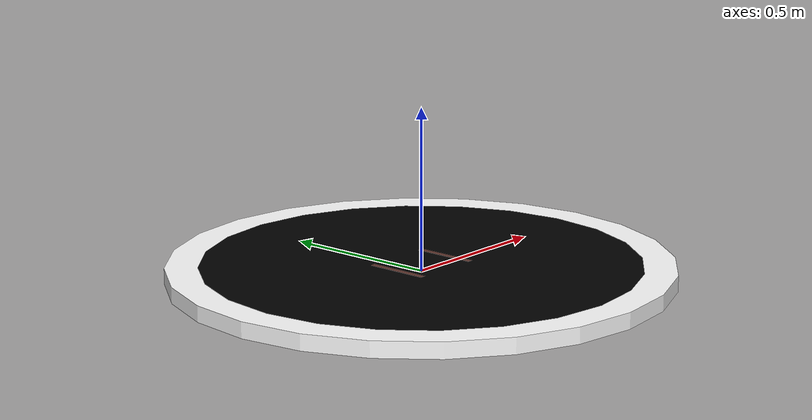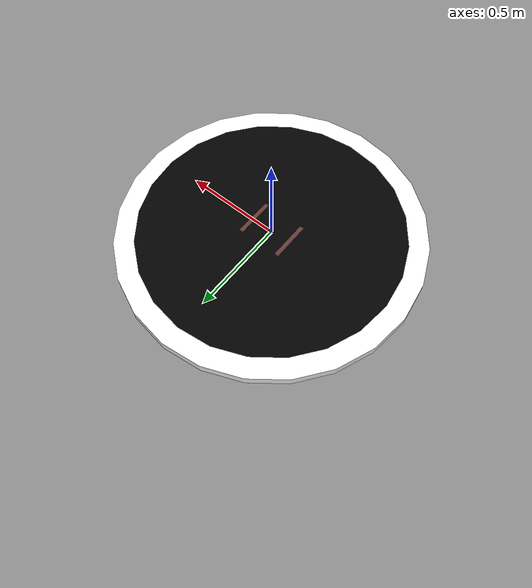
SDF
<?xml version="1.0" ?>
<sdf version="1.5">
  <world name="sumo_ring">
    <physics type="ode">
      <!-- Theoretically 100x real time speed, but obviously limited by
           how fast the computer can handle it... -->
      <real_time_update_rate>100000</real_time_update_rate>
    </physics>
    <include>
      <uri>model://sun</uri>
    </include>
    <model name="ring">
      <static>true</static>
      <link name="base_link">
        <visual name="white_circle">
          <geometry>
            <cylinder>
              <length>0.05</length>
              <radius>0.67</radius>
            </cylinder>
          </geometry>
          <material>
            <ambient>0 0 0 1</ambient>
            <diffuse>0 0 0 1</diffuse>
            <specular>0 0 0 0</specular>
            <emissive>0 0 0 1</emissive>
          </material>
        </visual>
        <visual name="black_ring">
          <geometry>
            <cylinder>
              <length>0.0499</length>
              <radius>0.77</radius>
            </cylinder>
          </geometry>
          <material>
            <ambient>1 1 1 1</ambient>
            <diffuse>1 1 1 1</diffuse>
            <specular>0 0 0 0</specular>
            <emissive>0 0 0 1</emissive>
          </material>
        </visual>
        <visual name="starting_line_1">
          <pose>0.11 0 0 0 0 0</pose>
          <geometry>
            <box>
              <size>0.02 0.2 0.0501</size>
            </box>
          </geometry>
          <material>
            <ambient>0.37 0.21 0.18 1</ambient>
            <diffuse>0.37 0.21 0.18 1</diffuse>
            <specular>0 0 0 0</specular>
            <emissive>0 0 0 1</emissive>
          </material>
        </visual>
        <visual name="starting_line_2">
          <pose>-0.11 0 0 0 0 0</pose>
          <geometry>
            <box>
              <size>0.02 0.2 0.0501</size>
            </box>
          </geometry>
          <material>
            <ambient>0.37 0.21 0.18 1</ambient>
            <diffuse>0.37 0.21 0.18 1</diffuse>
            <specular>0 0 0 0</specular>
            <emissive>0 0 0 1</emissive>
          </material>
        </visual>
        <collision name="collision">
          <geometry>
            <cylinder>
              <length>0.05</length>
              <radius>0.77</radius>
            </cylinder>
          </geometry>
        </collision>
      </link>
    </model>
  </world>
</sdf>
